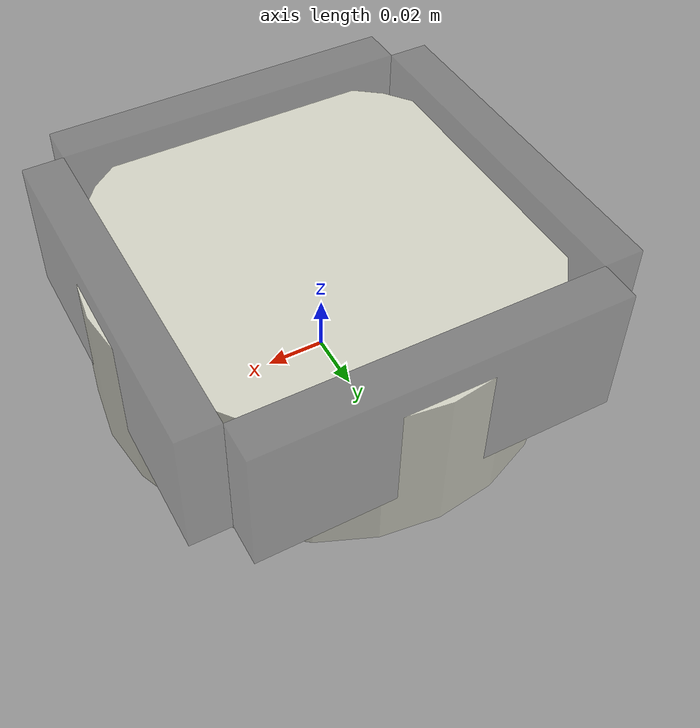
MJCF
<mujoco model="bowl">
  <compiler autolimits="true"/>
  <default>
    <geom friction="0.9 0.01 0.001" condim="3" solref="0.008 1" solimp="0.90 0.95 0.001" margin="0.001"/>
  </default>
  <worldbody>
    <body name="bowl" pos="0 0 0.024">
      <freejoint/>
      <inertial pos="0 0 0" mass="0.18" diaginertia="0.00045 0.00045 0.00082"/>
      <geom name="bowl_base_collision" type="cylinder" size="0.070 0.014" rgba="0.25 0.25 0.25 0.25"/>
      <geom name="bowl_wall_x_pos" type="box" size="0.007 0.062 0.024" pos="0.069 0 0.014" rgba="0.25 0.25 0.25 0.25"/>
      <geom name="bowl_wall_x_neg" type="box" size="0.007 0.062 0.024" pos="-0.069 0 0.014" rgba="0.25 0.25 0.25 0.25"/>
      <geom name="bowl_wall_y_pos" type="box" size="0.062 0.007 0.024" pos="0 0.069 0.014" rgba="0.25 0.25 0.25 0.25"/>
      <geom name="bowl_wall_y_neg" type="box" size="0.062 0.007 0.024" pos="0 -0.069 0.014" rgba="0.25 0.25 0.25 0.25"/>
      <geom name="bowl_visual" type="cylinder" size="0.078 0.028" contype="0" conaffinity="0" group="1" rgba="0.88 0.88 0.82 0.88"/>
    </body>
  </worldbody>
</mujoco>
